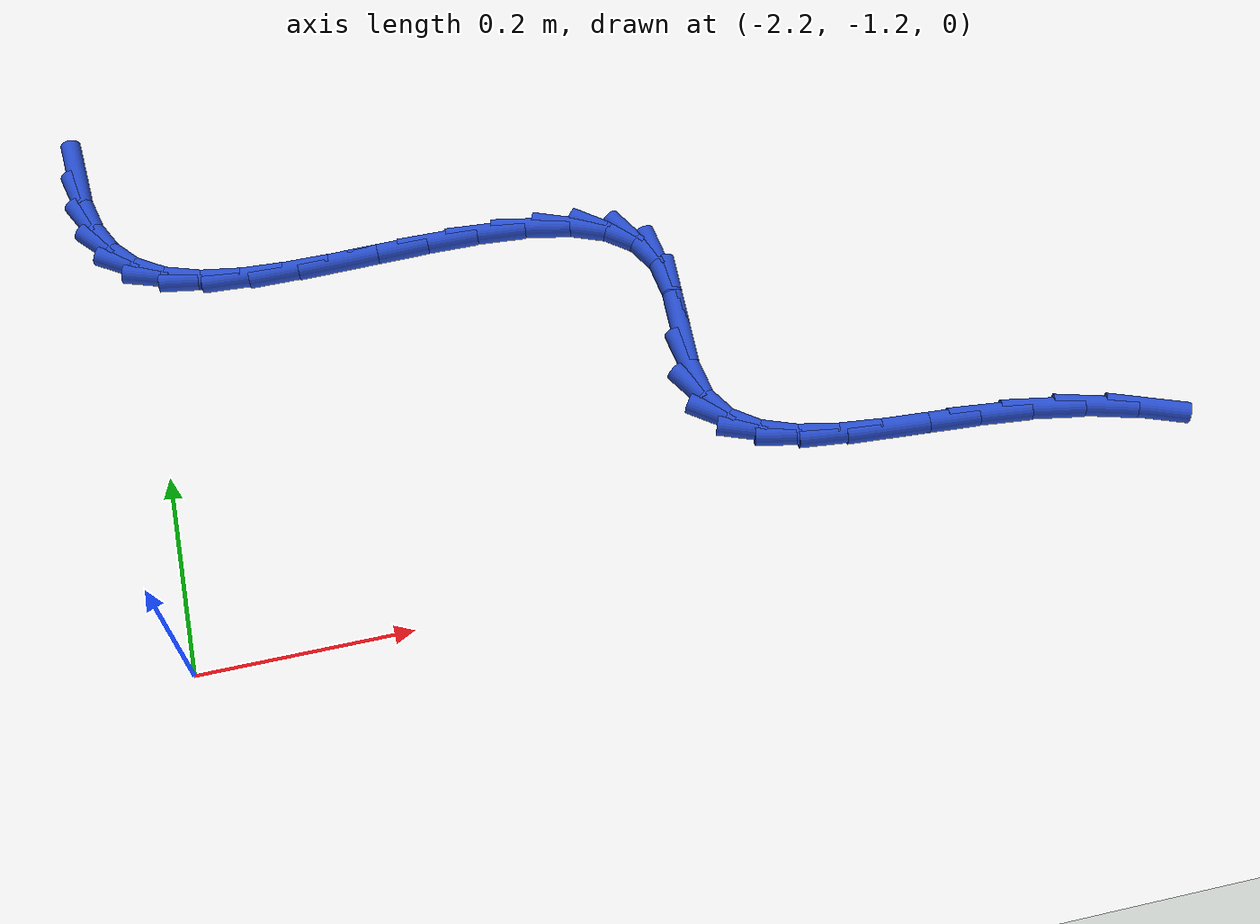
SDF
<sdf version="1.6">
 <world name="default">
  <model name="ground_plane">
   <static>1</static>
   <link name="link">
    <collision name="collision">
     <geometry><plane><normal>0 0 1</normal><size>100 100</size></plane></geometry>
     <surface><friction><ode><mu>100</mu><mu2>50</mu2></ode></friction></surface>
    </collision>
    <visual name="visual">
     <cast_shadows>0</cast_shadows>
     <geometry><plane><normal>0 0 1</normal><size>100 100</size></plane></geometry>
     <material>
      <script><uri>file://media/materials/scripts/gazebo.material</uri><name>Gazebo/WhiteGlow</name></script>
     </material>
    </visual>
   </link>
  </model>
  <model name="line">
   <link name="link_109">
    <pose>-2.2561428665197423 -0.639563073626608 0.01 0 1.57 -1.4847528460484904</pose>
    <collision name="collision">
     <geometry><cylinder><radius>0.01</radius><length>0.08</length></cylinder></geometry>
    </collision>
    <visual name="visual">
     <material>
      <script><name>Gazebo/Blue</name><uri>file://media/materials/scripts/gazebo.material</uri></script>
     </material>
     <geometry><cylinder><radius>0.01</radius><length>0.08</length></cylinder></geometry>
    </visual>
   </link>
   <link name="link_110">
    <pose>-2.2529174360976416 -0.6769565711804569 0.01 0 1.57 -1.3210395296468112</pose>
    <collision name="collision">
     <geometry><cylinder><radius>0.01</radius><length>0.08</length></cylinder></geometry>
    </collision>
    <visual name="visual">
     <material>
      <script><name>Gazebo/Blue</name><uri>file://media/materials/scripts/gazebo.material</uri></script>
     </material>
     <geometry><cylinder><radius>0.01</radius><length>0.08</length></cylinder></geometry>
    </visual>
   </link>
   <link name="link_111">
    <pose>-2.2444248901462553 -0.7102498522755851 0.01 0 1.57 -1.1066063632792311</pose>
    <collision name="collision">
     <geometry><cylinder><radius>0.01</radius><length>0.08</length></cylinder></geometry>
    </collision>
    <visual name="visual">
     <material>
      <script><name>Gazebo/Blue</name><uri>file://media/materials/scripts/gazebo.material</uri></script>
     </material>
     <geometry><cylinder><radius>0.01</radius><length>0.08</length></cylinder></geometry>
    </visual>
   </link>
   <link name="link_112">
    <pose>-2.230082905790639 -0.7388949709241861 0.01 0 1.57 -0.8458197302458234</pose>
    <collision name="collision">
     <geometry><cylinder><radius>0.01</radius><length>0.08</length></cylinder></geometry>
    </collision>
    <visual name="visual">
     <material>
      <script><name>Gazebo/Blue</name><uri>file://media/materials/scripts/gazebo.material</uri></script>
     </material>
     <geometry><cylinder><radius>0.01</radius><length>0.08</length></cylinder></geometry>
    </visual>
   </link>
   <link name="link_113">
    <pose>-2.2093091601558488 -0.7623439811384555 0.01 0 1.57 -0.5672871893802495</pose>
    <collision name="collision">
     <geometry><cylinder><radius>0.01</radius><length>0.08</length></cylinder></geometry>
    </collision>
    <visual name="visual">
     <material>
      <script><name>Gazebo/Blue</name><uri>file://media/materials/scripts/gazebo.material</uri></script>
     </material>
     <geometry><cylinder><radius>0.01</radius><length>0.08</length></cylinder></geometry>
    </visual>
   </link>
   <link name="link_114">
    <pose>-2.18152133036694 -0.7800489369305863 0.01 0 1.57 -0.31913042103423206</pose>
    <collision name="collision">
     <geometry><cylinder><radius>0.01</radius><length>0.08</length></cylinder></geometry>
    </collision>
    <visual name="visual">
     <material>
      <script><name>Gazebo/Blue</name><uri>file://media/materials/scripts/gazebo.material</uri></script>
     </material>
     <geometry><cylinder><radius>0.01</radius><length>0.08</length></cylinder></geometry>
    </visual>
   </link>
   <link name="link_115">
    <pose>-2.146370628346538 -0.7916635938596357 0.01 0 1.57 -0.1533088516838959</pose>
    <collision name="collision">
     <geometry><cylinder><radius>0.01</radius><length>0.08</length></cylinder></geometry>
    </collision>
    <visual name="visual">
     <material>
      <script><name>Gazebo/Blue</name><uri>file://media/materials/scripts/gazebo.material</uri></script>
     </material>
     <geometry><cylinder><radius>0.01</radius><length>0.08</length></cylinder></geometry>
    </visual>
   </link>
   <link name="link_116">
    <pose>-2.1049274580633615 -0.7980674487188175 0.01 0 1.57 -0.05485361118301497</pose>
    <collision name="collision">
     <geometry><cylinder><radius>0.01</radius><length>0.08</length></cylinder></geometry>
    </collision>
    <visual name="visual">
     <material>
      <script><name>Gazebo/Blue</name><uri>file://media/materials/scripts/gazebo.material</uri></script>
     </material>
     <geometry><cylinder><radius>0.01</radius><length>0.08</length></cylinder></geometry>
    </visual>
   </link>
   <link name="link_117">
    <pose>-2.0587954027663504 -0.8006004996343147 0.01 0 1.57 -6.238779145859056e-05</pose>
    <collision name="collision">
     <geometry><cylinder><radius>0.01</radius><length>0.08</length></cylinder></geometry>
    </collision>
    <visual name="visual">
     <material>
      <script><name>Gazebo/Blue</name><uri>file://media/materials/scripts/gazebo.material</uri></script>
     </material>
     <geometry><cylinder><radius>0.01</radius><length>0.08</length></cylinder></geometry>
    </visual>
   </link>
   <link name="link_118">
    <pose>-2.0095790013773076 -0.8006035701369049 0.01 0 1.57 0.02339169090901133</pose>
    <collision name="collision">
     <geometry><cylinder><radius>0.01</radius><length>0.08</length></cylinder></geometry>
    </collision>
    <visual name="visual">
     <material>
      <script><name>Gazebo/Blue</name><uri>file://media/materials/scripts/gazebo.material</uri></script>
     </material>
     <geometry><cylinder><radius>0.01</radius><length>0.08</length></cylinder></geometry>
    </visual>
   </link>
   <link name="link_119">
    <pose>-1.9588827928180343 -0.7994174837573652 0.01 0 1.57 0.020451755978274155</pose>
    <collision name="collision">
     <geometry><cylinder><radius>0.01</radius><length>0.08</length></cylinder></geometry>
    </collision>
    <visual name="visual">
     <material>
      <script><name>Gazebo/Blue</name><uri>file://media/materials/scripts/gazebo.material</uri></script>
     </material>
     <geometry><cylinder><radius>0.01</radius><length>0.08</length></cylinder></geometry>
    </visual>
   </link>
   <link name="link_120">
    <pose>-1.9083113160103355 -0.798383064026474 0.01 0 1.57 -0.009378303218004664</pose>
    <collision name="collision">
     <geometry><cylinder><radius>0.01</radius><length>0.08</length></cylinder></geometry>
    </collision>
    <visual name="visual">
     <material>
      <script><name>Gazebo/Blue</name><uri>file://media/materials/scripts/gazebo.material</uri></script>
     </material>
     <geometry><cylinder><radius>0.01</radius><length>0.08</length></cylinder></geometry>
    </visual>
   </link>
   <link name="link_121">
    <pose>-1.8594691098760128 -0.7988411344750079 0.01 0 1.57 -0.07219905373736173</pose>
    <collision name="collision">
     <geometry><cylinder><radius>0.01</radius><length>0.08</length></cylinder></geometry>
    </collision>
    <visual name="visual">
     <material>
      <script><name>Gazebo/Blue</name><uri>file://media/materials/scripts/gazebo.material</uri></script>
     </material>
     <geometry><cylinder><radius>0.01</radius><length>0.08</length></cylinder></geometry>
    </visual>
   </link>
   <link name="link_122">
    <pose>-1.8139607133368698 -0.8021325186337454 0.01 0 1.57 -0.18197976721288006</pose>
    <collision name="collision">
     <geometry><cylinder><radius>0.01</radius><length>0.08</length></cylinder></geometry>
    </collision>
    <visual name="visual">
     <material>
      <script><name>Gazebo/Blue</name><uri>file://media/materials/scripts/gazebo.material</uri></script>
     </material>
     <geometry><cylinder><radius>0.01</radius><length>0.08</length></cylinder></geometry>
    </visual>
   </link>
   <link name="link_123">
    <pose>-1.7733906653147091 -0.8095980400334633 0.01 0 1.57 -0.36443452154591427</pose>
    <collision name="collision">
     <geometry><cylinder><radius>0.01</radius><length>0.08</length></cylinder></geometry>
    </collision>
    <visual name="visual">
     <material>
      <script><name>Gazebo/Blue</name><uri>file://media/materials/scripts/gazebo.material</uri></script>
     </material>
     <geometry><cylinder><radius>0.01</radius><length>0.08</length></cylinder></geometry>
    </visual>
   </link>
   <link name="link_124">
    <pose>-1.7393635047313338 -0.8225785222049393 0.01 0 1.57 -0.653964365005562</pose>
    <collision name="collision">
     <geometry><cylinder><radius>0.01</radius><length>0.08</length></cylinder></geometry>
    </collision>
    <visual name="visual">
     <material>
      <script><name>Gazebo/Blue</name><uri>file://media/materials/scripts/gazebo.material</uri></script>
     </material>
     <geometry><cylinder><radius>0.01</radius><length>0.08</length></cylinder></geometry>
    </visual>
   </link>
   <link name="link_125">
    <pose>-1.7134837705085482 -0.8424147886789508 0.01 0 1.57 -1.0487243872912162</pose>
    <collision name="collision">
     <geometry><cylinder><radius>0.01</radius><length>0.08</length></cylinder></geometry>
    </collision>
    <visual name="visual">
     <material>
      <script><name>Gazebo/Blue</name><uri>file://media/materials/scripts/gazebo.material</uri></script>
     </material>
     <geometry><cylinder><radius>0.01</radius><length>0.08</length></cylinder></geometry>
    </visual>
   </link>
   <link name="link_126">
    <pose>-1.6973560015681528 -0.8704476629862762 0.01 0 1.57 -1.427787630046161</pose>
    <collision name="collision">
     <geometry><cylinder><radius>0.01</radius><length>0.08</length></cylinder></geometry>
    </collision>
    <visual name="visual">
     <material>
      <script><name>Gazebo/Blue</name><uri>file://media/materials/scripts/gazebo.material</uri></script>
     </material>
     <geometry><cylinder><radius>0.01</radius><length>0.08</length></cylinder></geometry>
    </visual>
   </link>
   <link name="link_127">
    <pose>-1.6920162541055233 -0.9075313923599044 0.01 0 1.57 1.5390617087024814</pose>
    <collision name="collision">
     <geometry><cylinder><radius>0.01</radius><length>0.08</length></cylinder></geometry>
    </collision>
    <visual name="visual">
     <material>
      <script><name>Gazebo/Blue</name><uri>file://media/materials/scripts/gazebo.material</uri></script>
     </material>
     <geometry><cylinder><radius>0.01</radius><length>0.08</length></cylinder></geometry>
    </visual>
   </link>
   <link name="link_128">
    <pose>-1.6933684808335114 -0.9501275489412196 0.01 0 1.57 1.5417915136584794</pose>
    <collision name="collision">
     <geometry><cylinder><radius>0.01</radius><length>0.08</length></cylinder></geometry>
    </collision>
    <visual name="visual">
     <material>
      <script><name>Gazebo/Blue</name><uri>file://media/materials/scripts/gazebo.material</uri></script>
     </material>
     <geometry><cylinder><radius>0.01</radius><length>0.08</length></cylinder></geometry>
    </visual>
   </link>
   <link name="link_129">
    <pose>-1.6945939814431132 -0.992367329002741 0.01 0 1.57 -1.4141296116409428</pose>
    <collision name="collision">
     <geometry><cylinder><radius>0.01</radius><length>0.08</length></cylinder></geometry>
    </collision>
    <visual name="visual">
     <material>
      <script><name>Gazebo/Blue</name><uri>file://media/materials/scripts/gazebo.material</uri></script>
     </material>
     <geometry><cylinder><radius>0.01</radius><length>0.08</length></cylinder></geometry>
    </visual>
   </link>
   <link name="link_130">
    <pose>-1.6889010569929148 -1.0284073485316039 0.01 0 1.57 -1.024013712310412</pose>
    <collision name="collision">
     <geometry><cylinder><radius>0.01</radius><length>0.08</length></cylinder></geometry>
    </collision>
    <visual name="visual">
     <material>
      <script><name>Gazebo/Blue</name><uri>file://media/materials/scripts/gazebo.material</uri></script>
     </material>
     <geometry><cylinder><radius>0.01</radius><length>0.08</length></cylinder></geometry>
    </visual>
   </link>
   <link name="link_131">
    <pose>-1.6725964805879485 -1.0551938138599144 0.01 0 1.57 -0.6291468821400598</pose>
    <collision name="collision">
     <geometry><cylinder><radius>0.01</radius><length>0.08</length></cylinder></geometry>
    </collision>
    <visual name="visual">
     <material>
      <script><name>Gazebo/Blue</name><uri>file://media/materials/scripts/gazebo.material</uri></script>
     </material>
     <geometry><cylinder><radius>0.01</radius><length>0.08</length></cylinder></geometry>
    </visual>
   </link>
   <link name="link_132">
    <pose>-1.646777037152199 -1.0739854345543252 0.01 0 1.57 -0.352015694917814</pose>
    <collision name="collision">
     <geometry><cylinder><radius>0.01</radius><length>0.08</length></cylinder></geometry>
    </collision>
    <visual name="visual">
     <material>
      <script><name>Gazebo/Blue</name><uri>file://media/materials/scripts/gazebo.material</uri></script>
     </material>
     <geometry><cylinder><radius>0.01</radius><length>0.08</length></cylinder></geometry>
    </visual>
   </link>
   <link name="link_133">
    <pose>-1.6129500841875053 -1.086410563438529 0.01 0 1.57 -0.18835637947128026</pose>
    <collision name="collision">
     <geometry><cylinder><radius>0.01</radius><length>0.08</length></cylinder></geometry>
    </collision>
    <visual name="visual">
     <material>
      <script><name>Gazebo/Blue</name><uri>file://media/materials/scripts/gazebo.material</uri></script>
     </material>
     <geometry><cylinder><radius>0.01</radius><length>0.08</length></cylinder></geometry>
    </visual>
   </link>
   <link name="link_134">
    <pose>-1.5726229791957076 -1.0940975533362183 0.01 0 1.57 -0.10065633530572332</pose>
    <collision name="collision">
     <geometry><cylinder><radius>0.01</radius><length>0.08</length></cylinder></geometry>
    </collision>
    <visual name="visual">
     <material>
      <script><name>Gazebo/Blue</name><uri>file://media/materials/scripts/gazebo.material</uri></script>
     </material>
     <geometry><cylinder><radius>0.01</radius><length>0.08</length></cylinder></geometry>
    </visual>
   </link>
   <link name="link_135">
    <pose>-1.5273030796786453 -1.0986747570710842 0.01 0 1.57 -0.06334611491677718</pose>
    <collision name="collision">
     <geometry><cylinder><radius>0.01</radius><length>0.08</length></cylinder></geometry>
    </collision>
    <visual name="visual">
     <material>
      <script><name>Gazebo/Blue</name><uri>file://media/materials/scripts/gazebo.material</uri></script>
     </material>
     <geometry><cylinder><radius>0.01</radius><length>0.08</length></cylinder></geometry>
    </visual>
   </link>
   <link name="link_136">
    <pose>-1.4784977431381574 -1.1017705274668197 0.01 0 1.57 -0.06376675298664865</pose>
    <collision name="collision">
     <geometry><cylinder><radius>0.01</radius><length>0.08</length></cylinder></geometry>
    </collision>
    <visual name="visual">
     <material>
      <script><name>Gazebo/Blue</name><uri>file://media/materials/scripts/gazebo.material</uri></script>
     </material>
     <geometry><cylinder><radius>0.01</radius><length>0.08</length></cylinder></geometry>
    </visual>
   </link>
   <link name="link_137">
    <pose>-1.427714327076084 -1.105013217347116 0.01 0 1.57 -0.09759253374842607</pose>
    <collision name="collision">
     <geometry><cylinder><radius>0.01</radius><length>0.08</length></cylinder></geometry>
    </collision>
    <visual name="visual">
     <material>
      <script><name>Gazebo/Blue</name><uri>file://media/materials/scripts/gazebo.material</uri></script>
     </material>
     <geometry><cylinder><radius>0.01</radius><length>0.08</length></cylinder></geometry>
    </visual>
   </link>
   <link name="link_138">
    <pose>-1.3764601889942645 -1.1100311795356668 0.01 0 1.57 -0.16615224187040048</pose>
    <collision name="collision">
     <geometry><cylinder><radius>0.01</radius><length>0.08</length></cylinder></geometry>
    </collision>
    <visual name="visual">
     <material>
      <script><name>Gazebo/Blue</name><uri>file://media/materials/scripts/gazebo.material</uri></script>
     </material>
     <geometry><cylinder><radius>0.01</radius><length>0.08</length></cylinder></geometry>
    </visual>
   </link>
   <link name="link_139">
    <pose>-1.3262425822089434 -1.1184525858598449 0.01 0 1.57 -0.26213938277443183</pose>
    <collision name="collision">
     <geometry><cylinder><radius>0.01</radius><length>0.08</length></cylinder></geometry>
    </collision>
    <visual name="visual">
     <material>
      <script><name>Gazebo/Blue</name><uri>file://media/materials/scripts/gazebo.material</uri></script>
     </material>
     <geometry><cylinder><radius>0.01</radius><length>0.08</length></cylinder></geometry>
    </visual>
   </link>
   <link name="link_140">
    <pose>-1.2782389344057838 -1.1313326189109452 0.01 0 1.57 -0.3476563550332997</pose>
    <collision name="collision">
     <geometry><cylinder><radius>0.01</radius><length>0.08</length></cylinder></geometry>
    </collision>
    <visual name="visual">
     <material>
      <script><name>Gazebo/Blue</name><uri>file://media/materials/scripts/gazebo.material</uri></script>
     </material>
     <geometry><cylinder><radius>0.01</radius><length>0.08</length></cylinder></geometry>
    </visual>
   </link>
  </model>
 </world>
</sdf>
